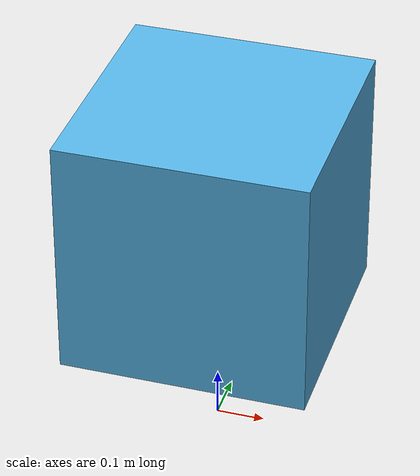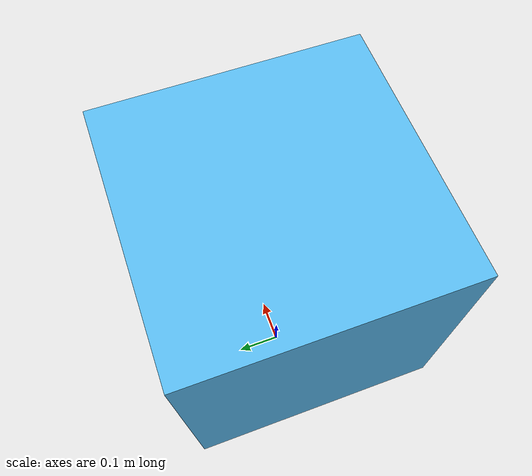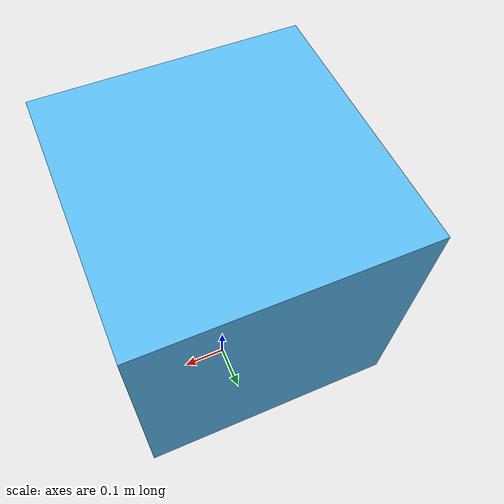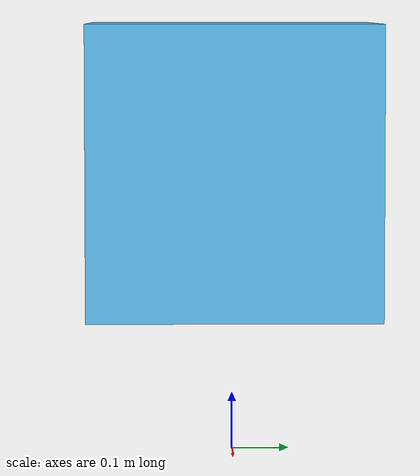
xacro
<?xml version="1.0"?>
<robot name="box" xmlns:xacro="http://ros.org/wiki/xacro">
  <xacro:property name="side" value="0.5" />

  <link name="world">
    <origin xyz="0 0 0" rpy="0 0 0"/>
  </link>

  <joint name="world_to_base" type="fixed">
    <origin xyz="0 0 0.25" rpy="0 0 0"/>
    <parent link="world"/>
    <child link="base_link"/>
  </joint>

  <link name="base_link">
    <visual>
      <origin rpy="0 0 0" xyz="0 0 0.25"/>
      <geometry>
        <box size="${side} ${side} ${side}" />
      </geometry>
    </visual>
    <collision>
      <geometry>
        <box size="${side} ${side} ${side}" />
      </geometry>
    </collision>
    <inertial>
      <mass value="0.6"/>
      <inertia ixx="0.025" ixy="0" ixz="0" iyy="0.025" iyz="0" izz="0.025"/>
    </inertial>
  </link>

  <gazebo>
    <plugin name="gazebo_ros_control" filename="libgazebo_ros_control.so">
      <robotNamespace>/box</robotNamespace>
      <robotSimType>gazebo_ros_control/DefaultRobotHWSim</robotSimType>
      <legacyModeNS>true</legacyModeNS>
    </plugin>
  </gazebo>

</robot>
